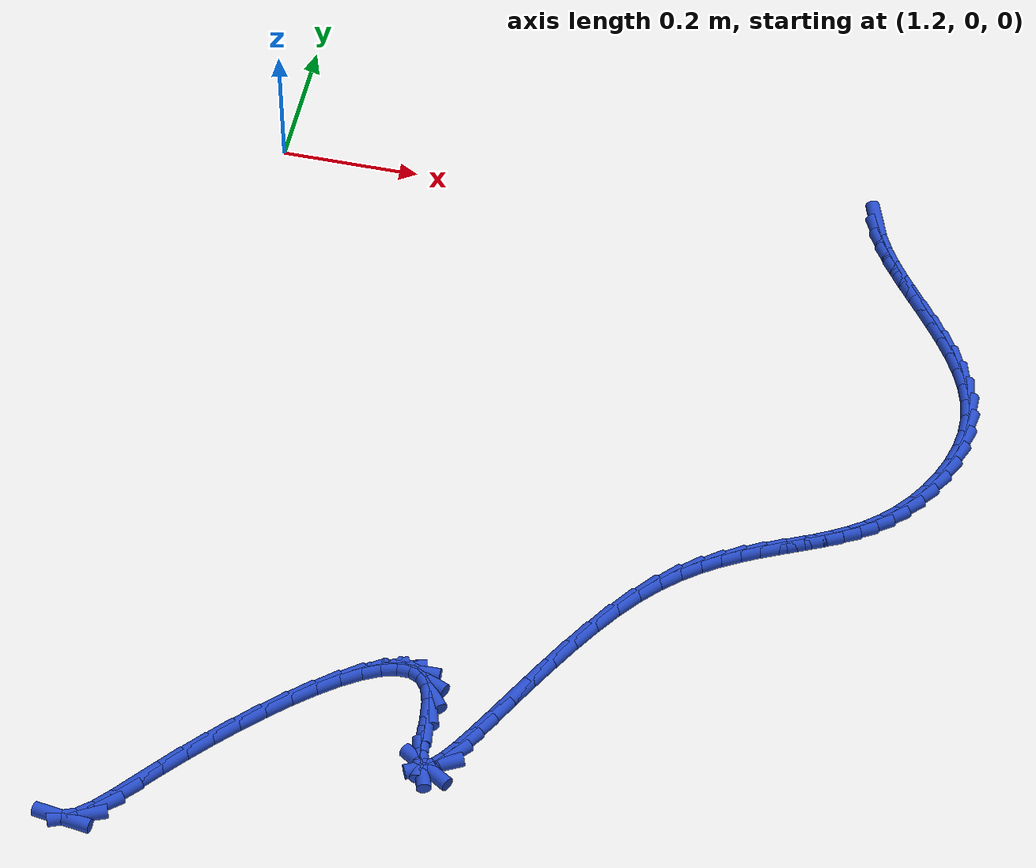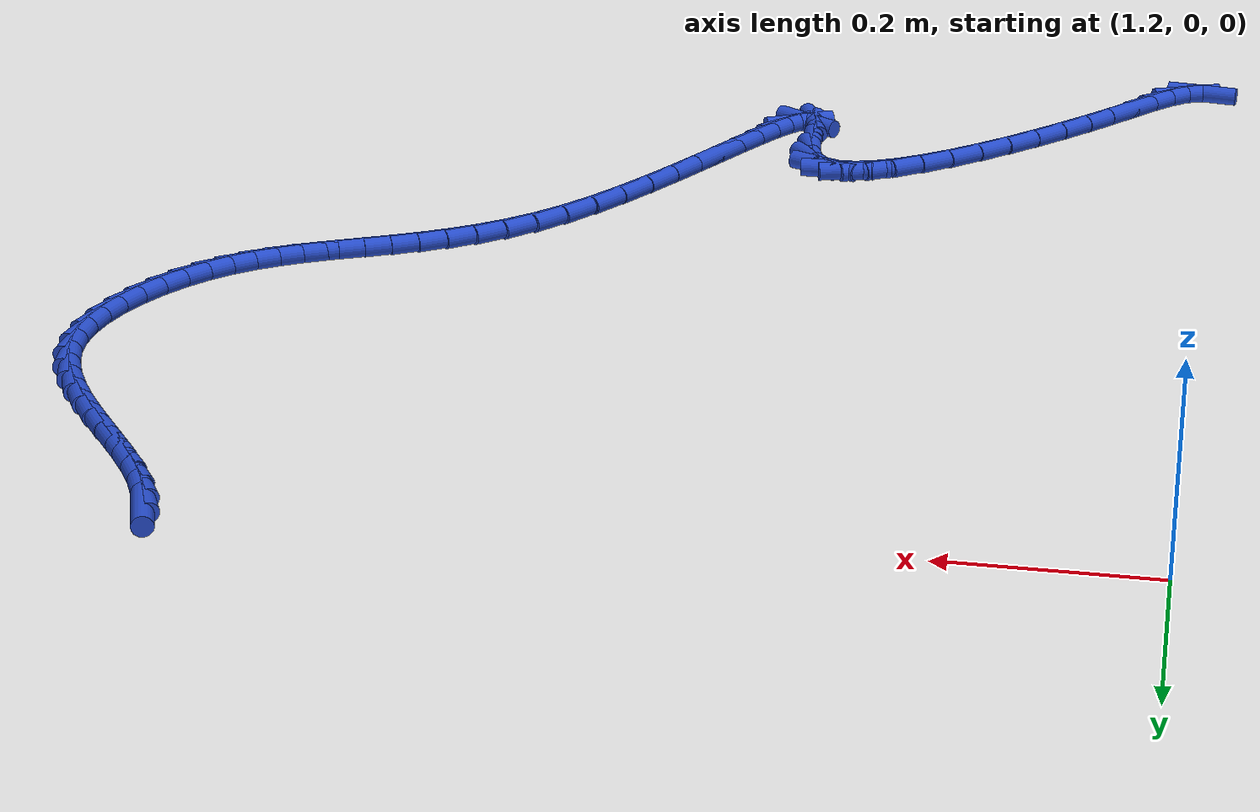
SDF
<sdf version="1.6">
 <world name="default">
  <model name="ground_plane">
   <static>1</static>
   <link name="link">
    <collision name="collision">
     <geometry><plane><normal>0 0 1</normal><size>100 100</size></plane></geometry>
     <surface><friction><ode><mu>100</mu><mu2>50</mu2></ode></friction></surface>
    </collision>
    <visual name="visual">
     <cast_shadows>0</cast_shadows>
     <geometry><plane><normal>0 0 1</normal><size>100 100</size></plane></geometry>
     <material>
      <script><uri>file://media/materials/scripts/gazebo.material</uri><name>Gazebo/WhiteGlow</name></script>
     </material>
    </visual>
   </link>
  </model>
  <model name="line">
   <link name="link_145">
    <pose>2.0715575026914905 0.03637421262052332 0.01 0 1.57 -1.2195549016931992</pose>
    <collision name="collision">
     <geometry><cylinder><radius>0.01</radius><length>0.08</length></cylinder></geometry>
    </collision>
    <visual name="visual">
     <material>
      <script><name>Gazebo/Blue</name><uri>file://media/materials/scripts/gazebo.material</uri></script>
     </material>
     <geometry><cylinder><radius>0.01</radius><length>0.08</length></cylinder></geometry>
    </visual>
   </link>
   <link name="link_146">
    <pose>2.0800119988355394 0.013301979642181974 0.01 0 1.57 -1.0976248843333258</pose>
    <collision name="collision">
     <geometry><cylinder><radius>0.01</radius><length>0.08</length></cylinder></geometry>
    </collision>
    <visual name="visual">
     <material>
      <script><name>Gazebo/Blue</name><uri>file://media/materials/scripts/gazebo.material</uri></script>
     </material>
     <geometry><cylinder><radius>0.01</radius><length>0.08</length></cylinder></geometry>
    </visual>
   </link>
   <link name="link_147">
    <pose>2.0919116435794307 -0.00994123381002903 0.01 0 1.57 -1.0122380414886116</pose>
    <collision name="collision">
     <geometry><cylinder><radius>0.01</radius><length>0.08</length></cylinder></geometry>
    </collision>
    <visual name="visual">
     <material>
      <script><name>Gazebo/Blue</name><uri>file://media/materials/scripts/gazebo.material</uri></script>
     </material>
     <geometry><cylinder><radius>0.01</radius><length>0.08</length></cylinder></geometry>
    </visual>
   </link>
   <link name="link_148">
    <pose>2.1065708323465 -0.033398077200656975 0.01 0 1.57 -0.9562895111055427</pose>
    <collision name="collision">
     <geometry><cylinder><radius>0.01</radius><length>0.08</length></cylinder></geometry>
    </collision>
    <visual name="visual">
     <material>
      <script><name>Gazebo/Blue</name><uri>file://media/materials/scripts/gazebo.material</uri></script>
     </material>
     <geometry><cylinder><radius>0.01</radius><length>0.08</length></cylinder></geometry>
    </visual>
   </link>
   <link name="link_149">
    <pose>2.1233039605600803 -0.057111199994248386 0.01 0 1.57 -0.9243054683211581</pose>
    <collision name="collision">
     <geometry><cylinder><radius>0.01</radius><length>0.08</length></cylinder></geometry>
    </collision>
    <visual name="visual">
     <material>
      <script><name>Gazebo/Blue</name><uri>file://media/materials/scripts/gazebo.material</uri></script>
     </material>
     <geometry><cylinder><radius>0.01</radius><length>0.08</length></cylinder></geometry>
    </visual>
   </link>
   <link name="link_150">
    <pose>2.141425423643507 -0.08112325165534981 0.01 0 1.57 -0.9127668643471821</pose>
    <collision name="collision">
     <geometry><cylinder><radius>0.01</radius><length>0.08</length></cylinder></geometry>
    </collision>
    <visual name="visual">
     <material>
      <script><name>Gazebo/Blue</name><uri>file://media/materials/scripts/gazebo.material</uri></script>
     </material>
     <geometry><cylinder><radius>0.01</radius><length>0.08</length></cylinder></geometry>
    </visual>
   </link>
   <link name="link_151">
    <pose>2.1602496170201126 -0.10547688164850777 0.01 0 1.57 -0.9198877308764554</pose>
    <collision name="collision">
     <geometry><cylinder><radius>0.01</radius><length>0.08</length></cylinder></geometry>
    </collision>
    <visual name="visual">
     <material>
      <script><name>Gazebo/Blue</name><uri>file://media/materials/scripts/gazebo.material</uri></script>
     </material>
     <geometry><cylinder><radius>0.01</radius><length>0.08</length></cylinder></geometry>
    </visual>
   </link>
   <link name="link_152">
    <pose>2.179090936113232 -0.1302147394382688 0.01 0 1.57 -0.9453554405483405</pose>
    <collision name="collision">
     <geometry><cylinder><radius>0.01</radius><length>0.08</length></cylinder></geometry>
    </collision>
    <visual name="visual">
     <material>
      <script><name>Gazebo/Blue</name><uri>file://media/materials/scripts/gazebo.material</uri></script>
     </material>
     <geometry><cylinder><radius>0.01</radius><length>0.08</length></cylinder></geometry>
    </visual>
   </link>
   <link name="link_153">
    <pose>2.1972637763461997 -0.15537947448917944 0.01 0 1.57 -0.9901416185792506</pose>
    <collision name="collision">
     <geometry><cylinder><radius>0.01</radius><length>0.08</length></cylinder></geometry>
    </collision>
    <visual name="visual">
     <material>
      <script><name>Gazebo/Blue</name><uri>file://media/materials/scripts/gazebo.material</uri></script>
     </material>
     <geometry><cylinder><radius>0.01</radius><length>0.08</length></cylinder></geometry>
    </visual>
   </link>
   <link name="link_154">
    <pose>2.2140825331423493 -0.18101373626578626 0.01 0 1.57 -1.0563262506509064</pose>
    <collision name="collision">
     <geometry><cylinder><radius>0.01</radius><length>0.08</length></cylinder></geometry>
    </collision>
    <visual name="visual">
     <material>
      <script><name>Gazebo/Blue</name><uri>file://media/materials/scripts/gazebo.material</uri></script>
     </material>
     <geometry><cylinder><radius>0.01</radius><length>0.08</length></cylinder></geometry>
    </visual>
   </link>
   <link name="link_155">
    <pose>2.228861601925015 -0.2071601742326366 0.01 0 1.57 -1.1467530778847912</pose>
    <collision name="collision">
     <geometry><cylinder><radius>0.01</radius><length>0.08</length></cylinder></geometry>
    </collision>
    <visual name="visual">
     <material>
      <script><name>Gazebo/Blue</name><uri>file://media/materials/scripts/gazebo.material</uri></script>
     </material>
     <geometry><cylinder><radius>0.01</radius><length>0.08</length></cylinder></geometry>
    </visual>
   </link>
   <link name="link_156">
    <pose>2.240915378117531 -0.23386143785427532 0.01 0 1.57 -1.2641773251333692</pose>
    <collision name="collision">
     <geometry><cylinder><radius>0.01</radius><length>0.08</length></cylinder></geometry>
    </collision>
    <visual name="visual">
     <material>
      <script><name>Gazebo/Blue</name><uri>file://media/materials/scripts/gazebo.material</uri></script>
     </material>
     <geometry><cylinder><radius>0.01</radius><length>0.08</length></cylinder></geometry>
    </visual>
   </link>
   <link name="link_157">
    <pose>2.2495582571432307 -0.2611601765952498 0.01 0 1.57 -1.4093477938573413</pose>
    <collision name="collision">
     <geometry><cylinder><radius>0.01</radius><length>0.08</length></cylinder></geometry>
    </collision>
    <visual name="visual">
     <material>
      <script><name>Gazebo/Blue</name><uri>file://media/materials/scripts/gazebo.material</uri></script>
     </material>
     <geometry><cylinder><radius>0.01</radius><length>0.08</length></cylinder></geometry>
    </visual>
   </link>
   <link name="link_158">
    <pose>2.2541082772229637 -0.28909736552463383 0.01 0 1.57 -1.5657032517232268</pose>
    <collision name="collision">
     <geometry><cylinder><radius>0.01</radius><length>0.08</length></cylinder></geometry>
    </collision>
    <visual name="visual">
     <material>
      <script><name>Gazebo/Blue</name><uri>file://media/materials/scripts/gazebo.material</uri></script>
     </material>
     <geometry><cylinder><radius>0.01</radius><length>0.08</length></cylinder></geometry>
    </visual>
   </link>
   <link name="link_159">
    <pose>2.2542531596087274 -0.3175440565710836 0.01 0 1.57 1.4352090993026003</pose>
    <collision name="collision">
     <geometry><cylinder><radius>0.01</radius><length>0.08</length></cylinder></geometry>
    </collision>
    <visual name="visual">
     <material>
      <script><name>Gazebo/Blue</name><uri>file://media/materials/scripts/gazebo.material</uri></script>
     </material>
     <geometry><cylinder><radius>0.01</radius><length>0.08</length></cylinder></geometry>
    </visual>
   </link>
   <link name="link_160">
    <pose>2.250363227922245 -0.3460575465580749 0.01 0 1.57 1.3106459448844716</pose>
    <collision name="collision">
     <geometry><cylinder><radius>0.01</radius><length>0.08</length></cylinder></geometry>
    </collision>
    <visual name="visual">
     <material>
      <script><name>Gazebo/Blue</name><uri>file://media/materials/scripts/gazebo.material</uri></script>
     </material>
     <geometry><cylinder><radius>0.01</radius><length>0.08</length></cylinder></geometry>
    </visual>
   </link>
   <link name="link_161">
    <pose>2.242882510744633 -0.37416125415642737 0.01 0 1.57 1.1985349870287274</pose>
    <collision name="collision">
     <geometry><cylinder><radius>0.01</radius><length>0.08</length></cylinder></geometry>
    </collision>
    <visual name="visual">
     <material>
      <script><name>Gazebo/Blue</name><uri>file://media/materials/scripts/gazebo.material</uri></script>
     </material>
     <geometry><cylinder><radius>0.01</radius><length>0.08</length></cylinder></geometry>
    </visual>
   </link>
   <link name="link_162">
    <pose>2.2322550366570026 -0.40137859803696024 0.01 0 1.57 1.0947566954579528</pose>
    <collision name="collision">
     <geometry><cylinder><radius>0.01</radius><length>0.08</length></cylinder></geometry>
    </collision>
    <visual name="visual">
     <material>
      <script><name>Gazebo/Blue</name><uri>file://media/materials/scripts/gazebo.material</uri></script>
     </material>
     <geometry><cylinder><radius>0.01</radius><length>0.08</length></cylinder></geometry>
    </visual>
   </link>
   <link name="link_163">
    <pose>2.218924834240469 -0.4272329968704928 0.01 0 1.57 0.9950291985616633</pose>
    <collision name="collision">
     <geometry><cylinder><radius>0.01</radius><length>0.08</length></cylinder></geometry>
    </collision>
    <visual name="visual">
     <material>
      <script><name>Gazebo/Blue</name><uri>file://media/materials/scripts/gazebo.material</uri></script>
     </material>
     <geometry><cylinder><radius>0.01</radius><length>0.08</length></cylinder></geometry>
    </visual>
   </link>
   <link name="link_164">
    <pose>2.2033359320761465 -0.4512478693278454 0.01 0 1.57 0.8948044167072792</pose>
    <collision name="collision">
     <geometry><cylinder><radius>0.01</radius><length>0.08</length></cylinder></geometry>
    </collision>
    <visual name="visual">
     <material>
      <script><name>Gazebo/Blue</name><uri>file://media/materials/scripts/gazebo.material</uri></script>
     </material>
     <geometry><cylinder><radius>0.01</radius><length>0.08</length></cylinder></geometry>
    </visual>
   </link>
   <link name="link_165">
    <pose>2.185932358745149 -0.4729466340798358 0.01 0 1.57 0.7893675563222595</pose>
    <collision name="collision">
     <geometry><cylinder><radius>0.01</radius><length>0.08</length></cylinder></geometry>
    </collision>
    <visual name="visual">
     <material>
      <script><name>Gazebo/Blue</name><uri>file://media/materials/scripts/gazebo.material</uri></script>
     </material>
     <geometry><cylinder><radius>0.01</radius><length>0.08</length></cylinder></geometry>
    </visual>
   </link>
   <link name="link_166">
    <pose>2.167149644212229 -0.4918790555932019 0.01 0 1.57 0.6843048885872626</pose>
    <collision name="collision">
     <geometry><cylinder><radius>0.01</radius><length>0.08</length></cylinder></geometry>
    </collision>
    <visual name="visual">
     <material>
      <script><name>Gazebo/Blue</name><uri>file://media/materials/scripts/gazebo.material</uri></script>
     </material>
     <geometry><cylinder><radius>0.01</radius><length>0.08</length></cylinder></geometry>
    </visual>
   </link>
   <link name="link_167">
    <pose>2.1472582640285696 -0.5081065686713522 0.01 0 1.57 0.5922577817243649</pose>
    <collision name="collision">
     <geometry><cylinder><radius>0.01</radius><length>0.08</length></cylinder></geometry>
    </collision>
    <visual name="visual">
     <material>
      <script><name>Gazebo/Blue</name><uri>file://media/materials/scripts/gazebo.material</uri></script>
     </material>
     <geometry><cylinder><radius>0.01</radius><length>0.08</length></cylinder></geometry>
    </visual>
   </link>
   <link name="link_168">
    <pose>2.1263789524925643 -0.5221548075024396 0.01 0 1.57 0.5185132220166553</pose>
    <collision name="collision">
     <geometry><cylinder><radius>0.01</radius><length>0.08</length></cylinder></geometry>
    </collision>
    <visual name="visual">
     <material>
      <script><name>Gazebo/Blue</name><uri>file://media/materials/scripts/gazebo.material</uri></script>
     </material>
     <geometry><cylinder><radius>0.01</radius><length>0.08</length></cylinder></geometry>
    </visual>
   </link>
   <link name="link_169">
    <pose>2.1046270170229744 -0.534566229655886 0.01 0 1.57 0.46586421758651175</pose>
    <collision name="collision">
     <geometry><cylinder><radius>0.01</radius><length>0.08</length></cylinder></geometry>
    </collision>
    <visual name="visual">
     <material>
      <script><name>Gazebo/Blue</name><uri>file://media/materials/scripts/gazebo.material</uri></script>
     </material>
     <geometry><cylinder><radius>0.01</radius><length>0.08</length></cylinder></geometry>
    </visual>
   </link>
   <link name="link_170">
    <pose>2.082117765038561 -0.545883292701113 0.01 0 1.57 0.4352514614147067</pose>
    <collision name="collision">
     <geometry><cylinder><radius>0.01</radius><length>0.08</length></cylinder></geometry>
    </collision>
    <visual name="visual">
     <material>
      <script><name>Gazebo/Blue</name><uri>file://media/materials/scripts/gazebo.material</uri></script>
     </material>
     <geometry><cylinder><radius>0.01</radius><length>0.08</length></cylinder></geometry>
    </visual>
   </link>
   <link name="link_171">
    <pose>2.058966503958084 -0.5566484542075422 0.01 0 1.57 0.42638270629083475</pose>
    <collision name="collision">
     <geometry><cylinder><radius>0.01</radius><length>0.08</length></cylinder></geometry>
    </collision>
    <visual name="visual">
     <material>
      <script><name>Gazebo/Blue</name><uri>file://media/materials/scripts/gazebo.material</uri></script>
     </material>
     <geometry><cylinder><radius>0.01</radius><length>0.08</length></cylinder></geometry>
    </visual>
   </link>
   <link name="link_172">
    <pose>2.0352885412003032 -0.5674041717445949 0.01 0 1.57 0.43822917856771143</pose>
    <collision name="collision">
     <geometry><cylinder><radius>0.01</radius><length>0.08</length></cylinder></geometry>
    </collision>
    <visual name="visual">
     <material>
      <script><name>Gazebo/Blue</name><uri>file://media/materials/scripts/gazebo.material</uri></script>
     </material>
     <geometry><cylinder><radius>0.01</radius><length>0.08</length></cylinder></geometry>
    </visual>
   </link>
   <link name="link_173">
    <pose>2.011199184183979 -0.5786929028816933 0.01 0 1.57 0.46925743404953035</pose>
    <collision name="collision">
     <geometry><cylinder><radius>0.01</radius><length>0.08</length></cylinder></geometry>
    </collision>
    <visual name="visual">
     <material>
      <script><name>Gazebo/Blue</name><uri>file://media/materials/scripts/gazebo.material</uri></script>
     </material>
     <geometry><cylinder><radius>0.01</radius><length>0.08</length></cylinder></geometry>
    </visual>
   </link>
   <link name="link_174">
    <pose>1.9868137403278743 -0.5910571051882582 0.01 0 1.57 0.5174348858550328</pose>
    <collision name="collision">
     <geometry><cylinder><radius>0.01</radius><length>0.08</length></cylinder></geometry>
    </collision>
    <visual name="visual">
     <material>
      <script><name>Gazebo/Blue</name><uri>file://media/materials/scripts/gazebo.material</uri></script>
     </material>
     <geometry><cylinder><radius>0.01</radius><length>0.08</length></cylinder></geometry>
    </visual>
   </link>
   <link name="link_175">
    <pose>1.9622475170507472 -0.6050392362337116 0.01 0 1.57 0.5801308736124545</pose>
    <collision name="collision">
     <geometry><cylinder><radius>0.01</radius><length>0.08</length></cylinder></geometry>
    </collision>
    <visual name="visual">
     <material>
      <script><name>Gazebo/Blue</name><uri>file://media/materials/scripts/gazebo.material</uri></script>
     </material>
     <geometry><cylinder><radius>0.01</radius><length>0.08</length></cylinder></geometry>
    </visual>
   </link>
   <link name="link_176">
    <pose>1.9376158217713584 -0.6211817535874751 0.01 0 1.57 0.6540639867609515</pose>
    <collision name="collision">
     <geometry><cylinder><radius>0.01</radius><length>0.08</length></cylinder></geometry>
    </collision>
    <visual name="visual">
     <material>
      <script><name>Gazebo/Blue</name><uri>file://media/materials/scripts/gazebo.material</uri></script>
     </material>
     <geometry><cylinder><radius>0.01</radius><length>0.08</length></cylinder></geometry>
    </visual>
   </link>
   <link name="link_177">
    <pose>1.9130339619084693 -0.6400271148189702 0.01 0 1.57 0.7354250677712575</pose>
    <collision name="collision">
     <geometry><cylinder><radius>0.01</radius><length>0.08</length></cylinder></geometry>
    </collision>
    <visual name="visual">
     <material>
      <script><name>Gazebo/Blue</name><uri>file://media/materials/scripts/gazebo.material</uri></script>
     </material>
     <geometry><cylinder><radius>0.01</radius><length>0.08</length></cylinder></geometry>
    </visual>
   </link>
   <link name="link_178">
    <pose>1.8886172448808398 -0.6621177774976185 0.01 0 1.57 0.8202169513444161</pose>
    <collision name="collision">
     <geometry><cylinder><radius>0.01</radius><length>0.08</length></cylinder></geometry>
    </collision>
    <visual name="visual">
     <material>
      <script><name>Gazebo/Blue</name><uri>file://media/materials/scripts/gazebo.material</uri></script>
     </material>
     <geometry><cylinder><radius>0.01</radius><length>0.08</length></cylinder></geometry>
    </visual>
   </link>
   <link name="link_179">
    <pose>1.8644809781072302 -0.6879961991928416 0.01 0 1.57 0.9016706753453104</pose>
    <collision name="collision">
     <geometry><cylinder><radius>0.01</radius><length>0.08</length></cylinder></geometry>
    </collision>
    <visual name="visual">
     <material>
      <script><name>Gazebo/Blue</name><uri>file://media/materials/scripts/gazebo.material</uri></script>
     </material>
     <geometry><cylinder><radius>0.01</radius><length>0.08</length></cylinder></geometry>
    </visual>
   </link>
   <link name="link_180">
    <pose>1.8407450737182864 -0.7180100378381726 0.01 0 1.57 0.9638791909178015</pose>
    <collision name="collision">
     <geometry><cylinder><radius>0.01</radius><length>0.08</length></cylinder></geometry>
    </collision>
    <visual name="visual">
     <material>
      <script><name>Gazebo/Blue</name><uri>file://media/materials/scripts/gazebo.material</uri></script>
     </material>
     <geometry><cylinder><radius>0.01</radius><length>0.08</length></cylinder></geometry>
    </visual>
   </link>
   <link name="link_181">
    <pose>1.8175554170316293 -0.7514081709242268 0.01 0 1.57 1.0079835386832794</pose>
    <collision name="collision">
     <geometry><cylinder><radius>0.01</radius><length>0.08</length></cylinder></geometry>
    </collision>
    <visual name="visual">
     <material>
      <script><name>Gazebo/Blue</name><uri>file://media/materials/scripts/gazebo.material</uri></script>
     </material>
     <geometry><cylinder><radius>0.01</radius><length>0.08</length></cylinder></geometry>
    </visual>
   </link>
   <link name="link_182">
    <pose>1.7950669915379895 -0.7870545830638436 0.01 0 1.57 1.038876381526461</pose>
    <collision name="collision">
     <geometry><cylinder><radius>0.01</radius><length>0.08</length></cylinder></geometry>
    </collision>
    <visual name="visual">
     <material>
      <script><name>Gazebo/Blue</name><uri>file://media/materials/scripts/gazebo.material</uri></script>
     </material>
     <geometry><cylinder><radius>0.01</radius><length>0.08</length></cylinder></geometry>
    </visual>
   </link>
   <link name="link_183">
    <pose>1.7734347904544407 -0.8238128474025582 0.01 0 1.57 1.0592699824978258</pose>
    <collision name="collision">
     <geometry><cylinder><radius>0.01</radius><length>0.08</length></cylinder></geometry>
    </collision>
    <visual name="visual">
     <material>
      <script><name>Gazebo/Blue</name><uri>file://media/materials/scripts/gazebo.material</uri></script>
     </material>
     <geometry><cylinder><radius>0.01</radius><length>0.08</length></cylinder></geometry>
    </visual>
   </link>
   <link name="link_184">
    <pose>1.752813806998058 -0.8605465370859058 0.01 0 1.57 1.070334766506192</pose>
    <collision name="collision">
     <geometry><cylinder><radius>0.01</radius><length>0.08</length></cylinder></geometry>
    </collision>
    <visual name="visual">
     <material>
      <script><name>Gazebo/Blue</name><uri>file://media/materials/scripts/gazebo.material</uri></script>
     </material>
     <geometry><cylinder><radius>0.01</radius><length>0.08</length></cylinder></geometry>
    </visual>
   </link>
   <link name="link_185">
    <pose>1.7333590343859162 -0.8961192252594213 0.01 0 1.57 1.0718335426668106</pose>
    <collision name="collision">
     <geometry><cylinder><radius>0.01</radius><length>0.08</length></cylinder></geometry>
    </collision>
    <visual name="visual">
     <material>
      <script><name>Gazebo/Blue</name><uri>file://media/materials/scripts/gazebo.material</uri></script>
     </material>
     <geometry><cylinder><radius>0.01</radius><length>0.08</length></cylinder></geometry>
    </visual>
   </link>
   <link name="link_186">
    <pose>1.7152254658350898 -0.929394485068639 0.01 0 1.57 1.061681911098545</pose>
    <collision name="collision">
     <geometry><cylinder><radius>0.01</radius><length>0.08</length></cylinder></geometry>
    </collision>
    <visual name="visual">
     <material>
      <script><name>Gazebo/Blue</name><uri>file://media/materials/scripts/gazebo.material</uri></script>
     </material>
     <geometry><cylinder><radius>0.01</radius><length>0.08</length></cylinder></geometry>
    </visual>
   </link>
   <link name="link_187">
    <pose>1.6985680945626531 -0.9592358896590937 0.01 0 1.57 1.034357713892081</pose>
    <collision name="collision">
     <geometry><cylinder><radius>0.01</radius><length>0.08</length></cylinder></geometry>
    </collision>
    <visual name="visual">
     <material>
      <script><name>Gazebo/Blue</name><uri>file://media/materials/scripts/gazebo.material</uri></script>
     </material>
     <geometry><cylinder><radius>0.01</radius><length>0.08</length></cylinder></geometry>
    </visual>
   </link>
   <link name="link_188">
    <pose>1.6835419137856817 -0.9845070121763204 0.01 0 1.57 0.975853109539616</pose>
    <collision name="collision">
     <geometry><cylinder><radius>0.01</radius><length>0.08</length></cylinder></geometry>
    </collision>
    <visual name="visual">
     <material>
      <script><name>Gazebo/Blue</name><uri>file://media/materials/scripts/gazebo.material</uri></script>
     </material>
     <geometry><cylinder><radius>0.01</radius><length>0.08</length></cylinder></geometry>
    </visual>
   </link>
   <link name="link_189">
    <pose>1.6703019167212494 -1.0040714257658534 0.01 0 1.57 0.844548560635255</pose>
    <collision name="collision">
     <geometry><cylinder><radius>0.01</radius><length>0.08</length></cylinder></geometry>
    </collision>
    <visual name="visual">
     <material>
      <script><name>Gazebo/Blue</name><uri>file://media/materials/scripts/gazebo.material</uri></script>
     </material>
     <geometry><cylinder><radius>0.01</radius><length>0.08</length></cylinder></geometry>
    </visual>
   </link>
   <link name="link_190">
    <pose>1.659003096586431 -1.0167927035732283 0.01 0 1.57 0.4757773190762131</pose>
    <collision name="collision">
     <geometry><cylinder><radius>0.01</radius><length>0.08</length></cylinder></geometry>
    </collision>
    <visual name="visual">
     <material>
      <script><name>Gazebo/Blue</name><uri>file://media/materials/scripts/gazebo.material</uri></script>
     </material>
     <geometry><cylinder><radius>0.01</radius><length>0.08</length></cylinder></geometry>
    </visual>
   </link>
   <link name="link_191">
    <pose>1.6498004465983018 -1.0215344187439785 0.01 0 1.57 -0.5616549520058142</pose>
    <collision name="collision">
     <geometry><cylinder><radius>0.01</radius><length>0.08</length></cylinder></geometry>
    </collision>
    <visual name="visual">
     <material>
      <script><name>Gazebo/Blue</name><uri>file://media/materials/scripts/gazebo.material</uri></script>
     </material>
     <geometry><cylinder><radius>0.01</radius><length>0.08</length></cylinder></geometry>
    </visual>
   </link>
   <link name="link_192">
    <pose>1.6428489599739364 -1.0171601444236393 0.01 0 1.57 -1.2694967282889218</pose>
    <collision name="collision">
     <geometry><cylinder><radius>0.01</radius><length>0.08</length></cylinder></geometry>
    </collision>
    <visual name="visual">
     <material>
      <script><name>Gazebo/Blue</name><uri>file://media/materials/scripts/gazebo.material</uri></script>
     </material>
     <geometry><cylinder><radius>0.01</radius><length>0.08</length></cylinder></geometry>
    </visual>
   </link>
   <link name="link_193">
    <pose>1.638303593505192 -1.0025335673930285 0.01 0 1.57 -1.4734108214083546</pose>
    <collision name="collision">
     <geometry><cylinder><radius>0.01</radius><length>0.08</length></cylinder></geometry>
    </collision>
    <visual name="visual">
     <material>
      <script><name>Gazebo/Blue</name><uri>file://media/materials/scripts/gazebo.material</uri></script>
     </material>
     <geometry><cylinder><radius>0.01</radius><length>0.08</length></cylinder></geometry>
    </visual>
   </link>
   <link name="link_194">
    <pose>1.6358922171053394 -0.9778507518912122 0.01 0 1.57 -1.502741682666127</pose>
    <collision name="collision">
     <geometry><cylinder><radius>0.01</radius><length>0.08</length></cylinder></geometry>
    </collision>
    <visual name="visual">
     <material>
      <script><name>Gazebo/Blue</name><uri>file://media/materials/scripts/gazebo.material</uri></script>
     </material>
     <geometry><cylinder><radius>0.01</radius><length>0.08</length></cylinder></geometry>
    </visual>
   </link>
   <link name="link_195">
    <pose>1.6338542671779435 -0.9479512090901056 0.01 0 1.57 -1.4433839730915934</pose>
    <collision name="collision">
     <geometry><cylinder><radius>0.01</radius><length>0.08</length></cylinder></geometry>
    </collision>
    <visual name="visual">
     <material>
      <script><name>Gazebo/Blue</name><uri>file://media/materials/scripts/gazebo.material</uri></script>
     </material>
     <geometry><cylinder><radius>0.01</radius><length>0.08</length></cylinder></geometry>
    </visual>
   </link>
   <link name="link_196">
    <pose>1.6301051299747107 -0.9186853852648206 0.01 0 1.57 -1.2575519958850259</pose>
    <collision name="collision">
     <geometry><cylinder><radius>0.01</radius><length>0.08</length></cylinder></geometry>
    </collision>
    <visual name="visual">
     <material>
      <script><name>Gazebo/Blue</name><uri>file://media/materials/scripts/gazebo.material</uri></script>
     </material>
     <geometry><cylinder><radius>0.01</radius><length>0.08</length></cylinder></geometry>
    </visual>
   </link>
   <link name="link_197">
    <pose>1.6226508777443063 -0.8956719326303156 0.01 0 1.57 -0.8944140253939599</pose>
    <collision name="collision">
     <geometry><cylinder><radius>0.01</radius><length>0.08</length></cylinder></geometry>
    </collision>
    <visual name="visual">
     <material>
      <script><name>Gazebo/Blue</name><uri>file://media/materials/scripts/gazebo.material</uri></script>
     </material>
     <geometry><cylinder><radius>0.01</radius><length>0.08</length></cylinder></geometry>
    </visual>
   </link>
   <link name="link_198">
    <pose>1.6108769205977767 -0.8810039059094905 0.01 0 1.57 -0.41952279741508536</pose>
    <collision name="collision">
     <geometry><cylinder><radius>0.01</radius><length>0.08</length></cylinder></geometry>
    </collision>
    <visual name="visual">
     <material>
      <script><name>Gazebo/Blue</name><uri>file://media/materials/scripts/gazebo.material</uri></script>
     </material>
     <geometry><cylinder><radius>0.01</radius><length>0.08</length></cylinder></geometry>
    </visual>
   </link>
   <link name="link_199">
    <pose>1.5952420634619033 -0.8740307549597787 0.01 0 1.57 -5.9503699349097245e-05</pose>
    <collision name="collision">
     <geometry><cylinder><radius>0.01</radius><length>0.08</length></cylinder></geometry>
    </collision>
    <visual name="visual">
     <material>
      <script><name>Gazebo/Blue</name><uri>file://media/materials/scripts/gazebo.material</uri></script>
     </material>
     <geometry><cylinder><radius>0.01</radius><length>0.08</length></cylinder></geometry>
    </visual>
   </link>
   <link name="link_200">
    <pose>1.5762333998242195 -0.8740296238739712 0.01 0 1.57 0.27797073774567993</pose>
    <collision name="collision">
     <geometry><cylinder><radius>0.01</radius><length>0.08</length></cylinder></geometry>
    </collision>
    <visual name="visual">
     <material>
      <script><name>Gazebo/Blue</name><uri>file://media/materials/scripts/gazebo.material</uri></script>
     </material>
     <geometry><cylinder><radius>0.01</radius><length>0.08</length></cylinder></geometry>
    </visual>
   </link>
   <link name="link_201">
    <pose>1.5543380231722588 -0.8802776567448605 0.01 0 1.57 0.45128474048746403</pose>
    <collision name="collision">
     <geometry><cylinder><radius>0.01</radius><length>0.08</length></cylinder></geometry>
    </collision>
    <visual name="visual">
     <material>
      <script><name>Gazebo/Blue</name><uri>file://media/materials/scripts/gazebo.material</uri></script>
     </material>
     <geometry><cylinder><radius>0.01</radius><length>0.08</length></cylinder></geometry>
    </visual>
   </link>
   <link name="link_202">
    <pose>1.5300430269935532 -0.8920519976652368 0.01 0 1.57 0.5640162442558595</pose>
    <collision name="collision">
     <geometry><cylinder><radius>0.01</radius><length>0.08</length></cylinder></geometry>
    </collision>
    <visual name="visual">
     <material>
      <script><name>Gazebo/Blue</name><uri>file://media/materials/scripts/gazebo.material</uri></script>
     </material>
     <geometry><cylinder><radius>0.01</radius><length>0.08</length></cylinder></geometry>
    </visual>
   </link>
   <link name="link_203">
    <pose>1.503835504775637 -0.9086297907278921 0.01 0 1.57 0.6419631600217014</pose>
    <collision name="collision">
     <geometry><cylinder><radius>0.01</radius><length>0.08</length></cylinder></geometry>
    </collision>
    <visual name="visual">
     <material>
      <script><name>Gazebo/Blue</name><uri>file://media/materials/scripts/gazebo.material</uri></script>
     </material>
     <geometry><cylinder><radius>0.01</radius><length>0.08</length></cylinder></geometry>
    </visual>
   </link>
   <link name="link_204">
    <pose>1.4762025500060427 -0.9292881800256183 0.01 0 1.57 0.698993045709345</pose>
    <collision name="collision">
     <geometry><cylinder><radius>0.01</radius><length>0.08</length></cylinder></geometry>
    </collision>
    <visual name="visual">
     <material>
      <script><name>Gazebo/Blue</name><uri>file://media/materials/scripts/gazebo.material</uri></script>
     </material>
     <geometry><cylinder><radius>0.01</radius><length>0.08</length></cylinder></geometry>
    </visual>
   </link>
   <link name="link_205">
    <pose>1.4476312561723028 -0.953304309651206 0.01 0 1.57 0.7428269173268711</pose>
    <collision name="collision">
     <geometry><cylinder><radius>0.01</radius><length>0.08</length></cylinder></geometry>
    </collision>
    <visual name="visual">
     <material>
      <script><name>Gazebo/Blue</name><uri>file://media/materials/scripts/gazebo.material</uri></script>
     </material>
     <geometry><cylinder><radius>0.01</radius><length>0.08</length></cylinder></geometry>
    </visual>
   </link>
   <link name="link_206">
    <pose>1.418608716761952 -0.9799553236974476 0.01 0 1.57 0.7780368559250067</pose>
    <collision name="collision">
     <geometry><cylinder><radius>0.01</radius><length>0.08</length></cylinder></geometry>
    </collision>
    <visual name="visual">
     <material>
      <script><name>Gazebo/Blue</name><uri>file://media/materials/scripts/gazebo.material</uri></script>
     </material>
     <geometry><cylinder><radius>0.01</radius><length>0.08</length></cylinder></geometry>
    </visual>
   </link>
   <link name="link_207">
    <pose>1.3896220252625222 -1.0085183662571342 0.01 0 1.57 0.8075270542774914</pose>
    <collision name="collision">
     <geometry><cylinder><radius>0.01</radius><length>0.08</length></cylinder></geometry>
    </collision>
    <visual name="visual">
     <material>
      <script><name>Gazebo/Blue</name><uri>file://media/materials/scripts/gazebo.material</uri></script>
     </material>
     <geometry><cylinder><radius>0.01</radius><length>0.08</length></cylinder></geometry>
    </visual>
   </link>
   <link name="link_208">
    <pose>1.3611582751615452 -1.0382705814230577 0.01 0 1.57 0.8333016458828438</pose>
    <collision name="collision">
     <geometry><cylinder><radius>0.01</radius><length>0.08</length></cylinder></geometry>
    </collision>
    <visual name="visual">
     <material>
      <script><name>Gazebo/Blue</name><uri>file://media/materials/scripts/gazebo.material</uri></script>
     </material>
     <geometry><cylinder><radius>0.01</radius><length>0.08</length></cylinder></geometry>
    </visual>
   </link>
   <link name="link_209">
    <pose>1.3337045599465571 -1.0684891132880086 0.01 0 1.57 0.8569052835370115</pose>
    <collision name="collision">
     <geometry><cylinder><radius>0.01</radius><length>0.08</length></cylinder></geometry>
    </collision>
    <visual name="visual">
     <material>
      <script><name>Gazebo/Blue</name><uri>file://media/materials/scripts/gazebo.material</uri></script>
     </material>
     <geometry><cylinder><radius>0.01</radius><length>0.08</length></cylinder></geometry>
    </visual>
   </link>
   <link name="link_210">
    <pose>1.3077479731050898 -1.098451105944779 0.01 0 1.57 0.8792846210253307</pose>
    <collision name="collision">
     <geometry><cylinder><radius>0.01</radius><length>0.08</length></cylinder></geometry>
    </collision>
    <visual name="visual">
     <material>
      <script><name>Gazebo/Blue</name><uri>file://media/materials/scripts/gazebo.material</uri></script>
     </material>
     <geometry><cylinder><radius>0.01</radius><length>0.08</length></cylinder></geometry>
    </visual>
   </link>
   <link name="link_211">
    <pose>1.2837658604113973 -1.1274191828589284 0.01 0 1.57 0.8830493724417</pose>
    <collision name="collision">
     <geometry><cylinder><radius>0.01</radius><length>0.08</length></cylinder></geometry>
    </collision>
    <visual name="visual">
     <material>
      <script><name>Gazebo/Blue</name><uri>file://media/materials/scripts/gazebo.material</uri></script>
     </material>
     <geometry><cylinder><radius>0.01</radius><length>0.08</length></cylinder></geometry>
    </visual>
   </link>
   <link name="link_212">
    <pose>1.2618550370940445 -1.1540891122709696 0.01 0 1.57 0.8345003298629424</pose>
    <collision name="collision">
     <geometry><cylinder><radius>0.01</radius><length>0.08</length></cylinder></geometry>
    </collision>
    <visual name="visual">
     <material>
      <script><name>Gazebo/Blue</name><uri>file://media/materials/scripts/gazebo.material</uri></script>
     </material>
     <geometry><cylinder><radius>0.01</radius><length>0.08</length></cylinder></geometry>
    </visual>
   </link>
   <link name="link_213">
    <pose>1.241617074982028 -1.1764189258273474 0.01 0 1.57 0.6968374047297814</pose>
    <collision name="collision">
     <geometry><cylinder><radius>0.01</radius><length>0.08</length></cylinder></geometry>
    </collision>
    <visual name="visual">
     <material>
      <script><name>Gazebo/Blue</name><uri>file://media/materials/scripts/gazebo.material</uri></script>
     </material>
     <geometry><cylinder><radius>0.01</radius><length>0.08</length></cylinder></geometry>
    </visual>
   </link>
   <link name="link_214">
    <pose>1.2226203551711736 -1.1923172127822117 0.01 0 1.57 0.3852615343429765</pose>
    <collision name="collision">
     <geometry><cylinder><radius>0.01</radius><length>0.08</length></cylinder></geometry>
    </collision>
    <visual name="visual">
     <material>
      <script><name>Gazebo/Blue</name><uri>file://media/materials/scripts/gazebo.material</uri></script>
     </material>
     <geometry><cylinder><radius>0.01</radius><length>0.08</length></cylinder></geometry>
    </visual>
   </link>
   <link name="link_215">
    <pose>1.2044332587870359 -1.1996925629762378 0.01 0 1.57 -0.14314102019185046</pose>
    <collision name="collision">
     <geometry><cylinder><radius>0.01</radius><length>0.08</length></cylinder></geometry>
    </collision>
    <visual name="visual">
     <material>
      <script><name>Gazebo/Blue</name><uri>file://media/materials/scripts/gazebo.material</uri></script>
     </material>
     <geometry><cylinder><radius>0.01</radius><length>0.08</length></cylinder></geometry>
    </visual>
   </link>
  </model>
 </world>
</sdf>
